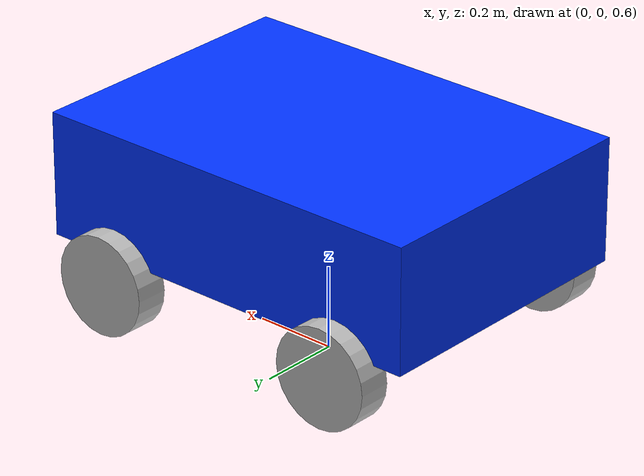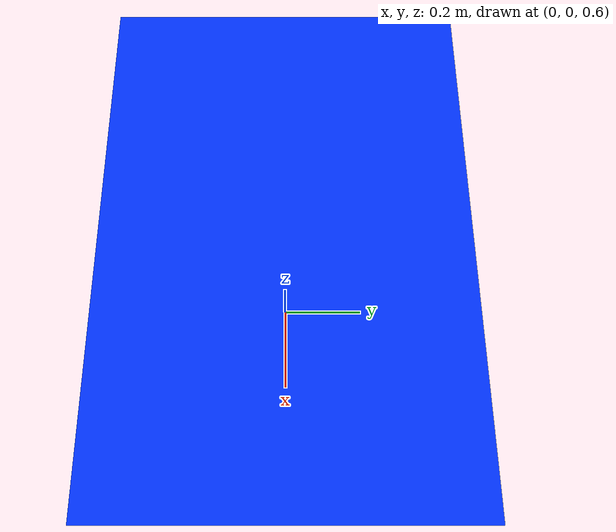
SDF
<?xml version="1.0"?>
<sdf version="1.10">

  <model name="BR">

    <!-- BR position -->
    <pose>0 0 1.0 0 0 0</pose>

    <static>false</static>

    <link name="base_link">
      <inertial>
        <mass>40.0</mass>
        <inertia>
          <ixx>2.0</ixx>
          <iyy>2.0</iyy>
          <izz>2.0</izz>
        </inertia>
      </inertial>

      <visual name="body">

        <geometry>
          <box>
            <size>1.0 0.7 0.30</size>
          </box>
        </geometry>

        <material>
          <ambient>0.0 0.2 1.0 1.0</ambient>
          <diffuse>0.0 0.2 1.0 1.0</diffuse>
        </material>

      </visual>

      <collision name="body_collision">

        <geometry>
          <box>
            <size>1.0 0.7 0.30</size>
          </box>
        </geometry>

      </collision>

    </link>

    <!-- FRONT LEFT -->
    <link name="wheel_fl">
      <inertial>
        <mass>1.0</mass>
        <inertia>
          <ixx>0.01</ixx>
          <iyy>0.01</iyy>
          <izz>0.01</izz>
        </inertia>
      </inertial>

      <pose>0.32 0.36 -0.20 1.57079632679 0 0</pose>

      <visual name="wheel_fl_visual">
        <geometry>
          <cylinder>
            <radius>0.12</radius>
            <length>0.08</length>
          </cylinder>
        </geometry>
      </visual>

      <collision name="wheel_fl_collision">
        <geometry>
          <cylinder>
            <radius>0.12</radius>
            <length>0.08</length>
          </cylinder>
        </geometry>
      </collision>
    </link>

    <!-- FRONT RIGHT -->
    <link name="wheel_fr">
      <inertial>
        <mass>1.0</mass>
        <inertia>
          <ixx>0.01</ixx>
          <iyy>0.01</iyy>
          <izz>0.01</izz>
        </inertia>
      </inertial>

      <pose>0.32 -0.36 -0.20 1.57079632679 0 0</pose>

      <visual name="wheel_fr_visual">
        <geometry>
          <cylinder>
            <radius>0.12</radius>
            <length>0.08</length>
          </cylinder>
        </geometry>
      </visual>

      <collision name="wheel_fr_collision">
        <geometry>
          <cylinder>
            <radius>0.12</radius>
            <length>0.08</length>
          </cylinder>
        </geometry>
      </collision>
    </link>

    <!-- REAR LEFT -->
    <link name="wheel_rl">
      <inertial>
        <mass>1.0</mass>
        <inertia>
          <ixx>0.01</ixx>
          <iyy>0.01</iyy>
          <izz>0.01</izz>
        </inertia>
      </inertial>

      <pose>-0.32 0.36 -0.20 1.57079632679 0 0</pose>

      <visual name="wheel_rl_visual">
        <geometry>
          <cylinder>
            <radius>0.12</radius>
            <length>0.08</length>
          </cylinder>
        </geometry>
      </visual>

      <collision name="wheel_rl_collision">
        <geometry>
          <cylinder>
            <radius>0.12</radius>
            <length>0.08</length>
          </cylinder>
        </geometry>
      </collision>
    </link>

    <!-- REAR RIGHT -->
    <link name="wheel_rr">
      <inertial>
        <mass>1.0</mass>
        <inertia>
          <ixx>0.01</ixx>
          <iyy>0.01</iyy>
          <izz>0.01</izz>
        </inertia>
      </inertial>

      <pose>-0.32 -0.36 -0.20 1.57079632679 0 0</pose>

      <visual name="wheel_rr_visual">
        <geometry>
          <cylinder>
            <radius>0.12</radius>
            <length>0.08</length>
          </cylinder>
        </geometry>
      </visual>

      <collision name="wheel_rr_collision">
        <geometry>
          <cylinder>
            <radius>0.12</radius>
            <length>0.08</length>
          </cylinder>
        </geometry>
      </collision>
    </link>

    <!-- ================= WHEEL JOINTS ================= -->

    <joint name="front_left_joint" type="revolute">
      <parent>base_link</parent>
      <child>wheel_fl</child>
      <axis>
        <xyz>0 0 1</xyz>
        <limit>
          <lower>-1000000</lower>
          <upper>1000000</upper>
          <effort>1000000</effort>
          <velocity>100</velocity>
        </limit>
      </axis>
    </joint>

    <joint name="front_right_joint" type="revolute">
      <parent>base_link</parent>
      <child>wheel_fr</child>
      <axis>
        <xyz>0 0 1</xyz>
        <limit>
          <lower>-1000000</lower>
          <upper>1000000</upper>
          <effort>1000000</effort>
          <velocity>100</velocity>
        </limit>
      </axis>
    </joint>

    <joint name="rear_left_joint" type="revolute">
      <parent>base_link</parent>
      <child>wheel_rl</child>
      <axis>
        <xyz>0 0 1</xyz>
        <limit>
          <lower>-1000000</lower>
          <upper>1000000</upper>
          <effort>1000000</effort>
          <velocity>100</velocity>
        </limit>
      </axis>
    </joint>

    <joint name="rear_right_joint" type="revolute">
      <parent>base_link</parent>
      <child>wheel_rr</child>
      <axis>
        <xyz>0 0 1</xyz>
        <limit>
          <lower>-1000000</lower>
          <upper>1000000</upper>
          <effort>1000000</effort>
          <velocity>100</velocity>
        </limit>
      </axis>
    </joint>

    <!-- ================= DIFF DRIVE ================= -->

    <plugin
      filename="gz-sim-diff-drive-system"
      name="gz::sim::systems::DiffDrive">

      <left_joint>front_left_joint</left_joint>
      <left_joint>rear_left_joint</left_joint>

      <right_joint>front_right_joint</right_joint>
      <right_joint>rear_right_joint</right_joint>

      <wheel_separation>0.72</wheel_separation>
      <wheel_radius>0.12</wheel_radius>

      <topic>/cmd_vel</topic>

      <odom_topic>/odom</odom_topic>

      <tf_topic>/tf</tf_topic>

      <frame_id>odom</frame_id>
      <child_frame_id>base_link</child_frame_id>

      <odom_publish_frequency>30</odom_publish_frequency>

      <max_linear_velocity>1.5</max_linear_velocity>
      <max_linear_acceleration>2.0</max_linear_acceleration>

      <max_angular_velocity>2.0</max_angular_velocity>
      <max_angular_acceleration>3.0</max_angular_acceleration>

    </plugin>

    <!-- ================= JOINT CONTROLLERS ================= -->

    <plugin
      filename="gz-sim-joint-controller-system"
      name="gz::sim::systems::JointController">

      <joint_name>front_left_joint</joint_name>
      <topic>/BR/front_left/cmd_vel</topic>
    </plugin>

    <plugin
      filename="gz-sim-joint-controller-system"
      name="gz::sim::systems::JointController">

      <joint_name>front_right_joint</joint_name>
      <topic>/BR/front_right/cmd_vel</topic>
    </plugin>

    <plugin
      filename="gz-sim-joint-controller-system"
      name="gz::sim::systems::JointController">

      <joint_name>rear_left_joint</joint_name>
      <topic>/BR/rear_left/cmd_vel</topic>
    </plugin>

    <plugin
      filename="gz-sim-joint-controller-system"
      name="gz::sim::systems::JointController">

      <joint_name>rear_right_joint</joint_name>
      <topic>/BR/rear_right/cmd_vel</topic>
    </plugin>

  </model>

</sdf>
